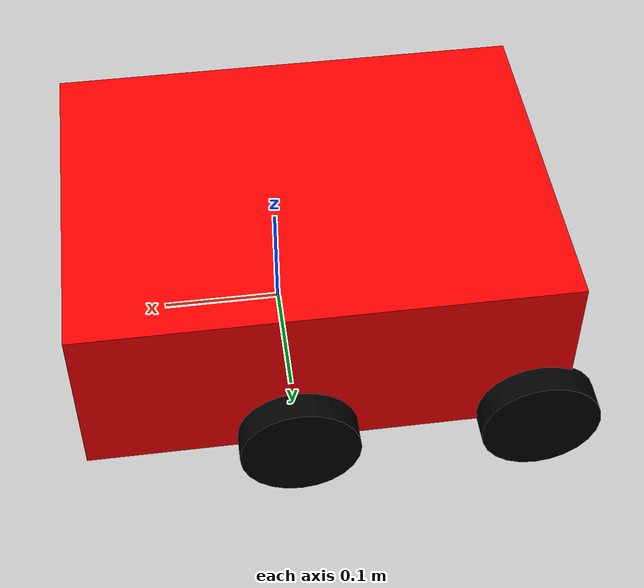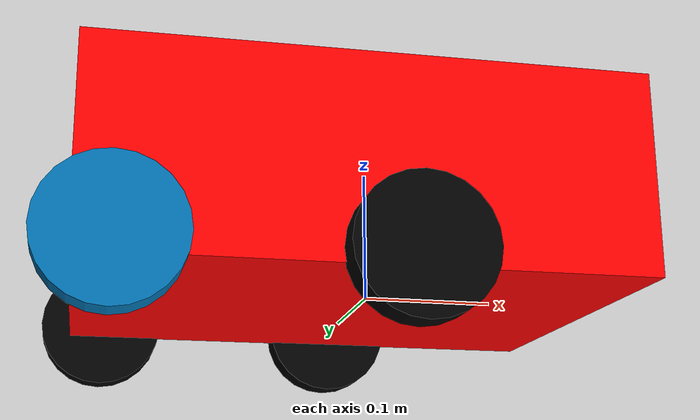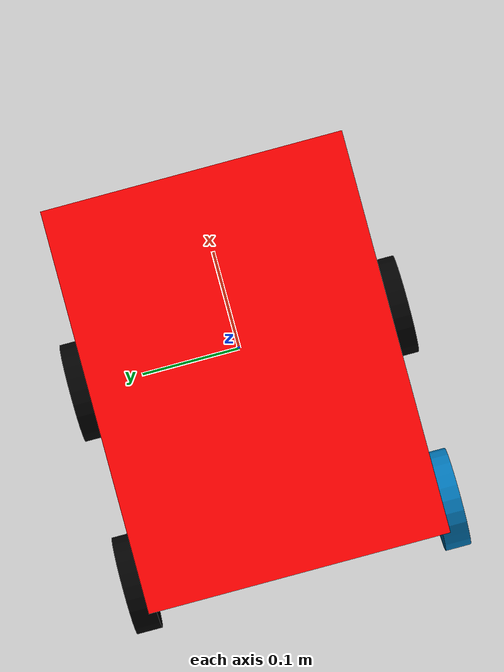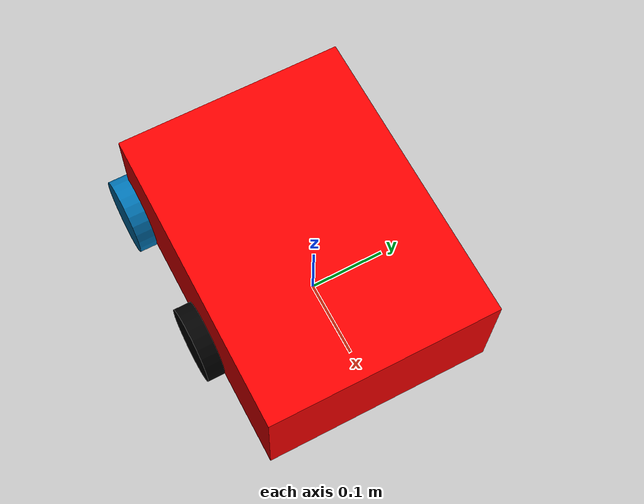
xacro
<?xml version="1.0"?>
<robot xmlns:xacro="http://www.ros.org/wiki/xacro" >

    <xacro:include filename="inertial_macros.xacro"/>

    <xacro:property name="chassis_length" value="0.4"/>
    <xacro:property name="chassis_width" value="0.3"/>
    <xacro:property name="chassis_height" value="0.15"/>
    <xacro:property name="chassis_mass" value="1.0"/>
    <xacro:property name="wheel_radius" value="0.05"/>
    <xacro:property name="wheel_thickness" value="0.026"/>
    <xacro:property name="wheel_mass" value="0.05"/>
    <xacro:property name="wheel_offset_x" value="0.226"/>
    <xacro:property name="wheel_offset_y" value="0.1485"/>
    <xacro:property name="wheel_offset_z" value="0.01"/>
    <material name="white">
        <color rgba="1 1 1 1" />
    </material>

    <material name="orange">
        <color rgba="1 0.3 0.1 1"/>
    </material>

    <material name="blue">
        <color rgba="0.2 0.2 1 1"/>
    </material>

    <material name="black">
        <color rgba="0 0 0 1"/>
    </material>

    <material name="red">
        <color rgba="1 0 0 1"/>
    </material>

    <!-- BASE LINK -->

    <link name="base_link">

    </link>

    <!-- CHASSIS LINK -->

    <joint name="chassis_joint" type="fixed">
        <parent link="base_link"/>
        <child link="chassis"/>
        <origin xyz="${-wheel_offset_x} 0 ${-wheel_offset_z}"/>
    </joint>

    <link name="chassis">
        <visual>
            <origin xyz="${chassis_length/2} 0 ${chassis_height/2}"/>
            <geometry>
                <box size="${chassis_length} ${chassis_width} ${chassis_height}"/>
            </geometry>
            <material name="red"/>
        </visual>
        <collision>
            <origin xyz="${chassis_length/2} 0 ${chassis_height/2}"/>
            <geometry>
                <box size="${chassis_length} ${chassis_width} ${chassis_height}"/>
            </geometry>
        </collision>
        <xacro:inertial_box mass="0.5" x="${chassis_length}" y="${chassis_width}" z="${chassis_height}">
            <origin xyz="${chassis_length/2} 0 ${chassis_height/2}" rpy="0 0 0"/>
        </xacro:inertial_box>
    </link>

    <!-- LEFT WHEEL LINK -->

    <joint name="left_wheel_joint" type="continuous">
        <parent link="base_link"/>
        <child link="left_wheel"/>
        <origin xyz="0 0.16 0" rpy="-${pi/2} 0 0" />
        <axis xyz="0 0 1"/>
    </joint>

    <link name="left_wheel">
        <visual>
            <geometry>
                <cylinder radius="${wheel_radius}" length="${wheel_thickness}"/>
            </geometry>
            <material name="black"/>
        </visual>
        <collision>
            <geometry>
                <sphere radius="${wheel_radius}"/>
            </geometry>
        </collision>
        <xacro:inertial_cylinder mass="${wheel_mass}" length="${wheel_thickness}" radius="${wheel_radius}">
            <origin xyz="0 0 0" rpy="0 0 0"/>
        </xacro:inertial_cylinder>
    </link>

    <!-- RIGHT WHEEL LINK -->

    <joint name="right_wheel_joint" type="continuous">
        <parent link="base_link"/>
        <child link="right_wheel"/>
        <origin xyz="0 -0.16 0" rpy="${pi/2} 0 0" />
        <axis xyz="0 0 -1"/>
    </joint>

    <link name="right_wheel">
        <visual>
            <geometry>
                <cylinder radius="${wheel_radius}" length="${wheel_thickness}"/>
            </geometry>
            <material name="black"/>
        </visual>
        <collision>
            <geometry>
                <sphere radius="${wheel_radius}"/>
            </geometry>
        </collision>
        <xacro:inertial_cylinder mass="${wheel_mass}" length="${wheel_thickness}" radius="${wheel_radius}">
            <origin xyz="0 0 0" rpy="0 0 0"/>
        </xacro:inertial_cylinder>
    </link>

    <!-- RIGHT ROLLER WHEEL LINK -->

    <joint name="right_roller_joint1" type="fixed">
        <parent link="base_link"/>
        <child link="right_roller1"/>
        <origin xyz="-0.2 -0.16 0" rpy="${pi/2} 0 0" />
        <axis xyz="0 0 -1"/>
    </joint>

    <link name="right_roller1">
        <visual>
            <geometry>
                <cylinder radius="${wheel_radius}" length="${wheel_thickness}"/>
            </geometry>
            <material name="blsck"/>
        </visual>
        <collision>
            <geometry>
                <cylinder radius="${wheel_radius}" length="${wheel_thickness}"/>
            </geometry>
        </collision>
        <xacro:inertial_cylinder mass="${wheel_mass}" length="${wheel_thickness}" radius="${wheel_radius}">
            <origin xyz="0 0 0" rpy="0 0 0"/>
        </xacro:inertial_cylinder>
    </link>

    <!-- LEFT ROLLER WHEEL LINK -->

    <joint name="left_roller_joint1" type="fixed">
        <parent link="base_link"/>
        <child link="left_roller1"/>
        <origin xyz="-0.2 0.16 0" rpy="-${pi/2} 0 0" />
        <axis xyz="0 0 1"/>
    </joint>

    <link name="left_roller1">
        <visual>
            <geometry>
                <cylinder radius="${wheel_radius}" length="${wheel_thickness}"/>
            </geometry>
            <material name="black"/>
        </visual>
        <collision>
            <geometry>
                <cylinder radius="${wheel_radius}" length="${wheel_thickness}"/>
            </geometry>
        </collision>
        <xacro:inertial_cylinder mass="${wheel_mass}" length="${wheel_thickness}" radius="${wheel_radius}">
            <origin xyz="0 0 0" rpy="0 0 0"/>
        </xacro:inertial_cylinder>
    </link>

</robot>
